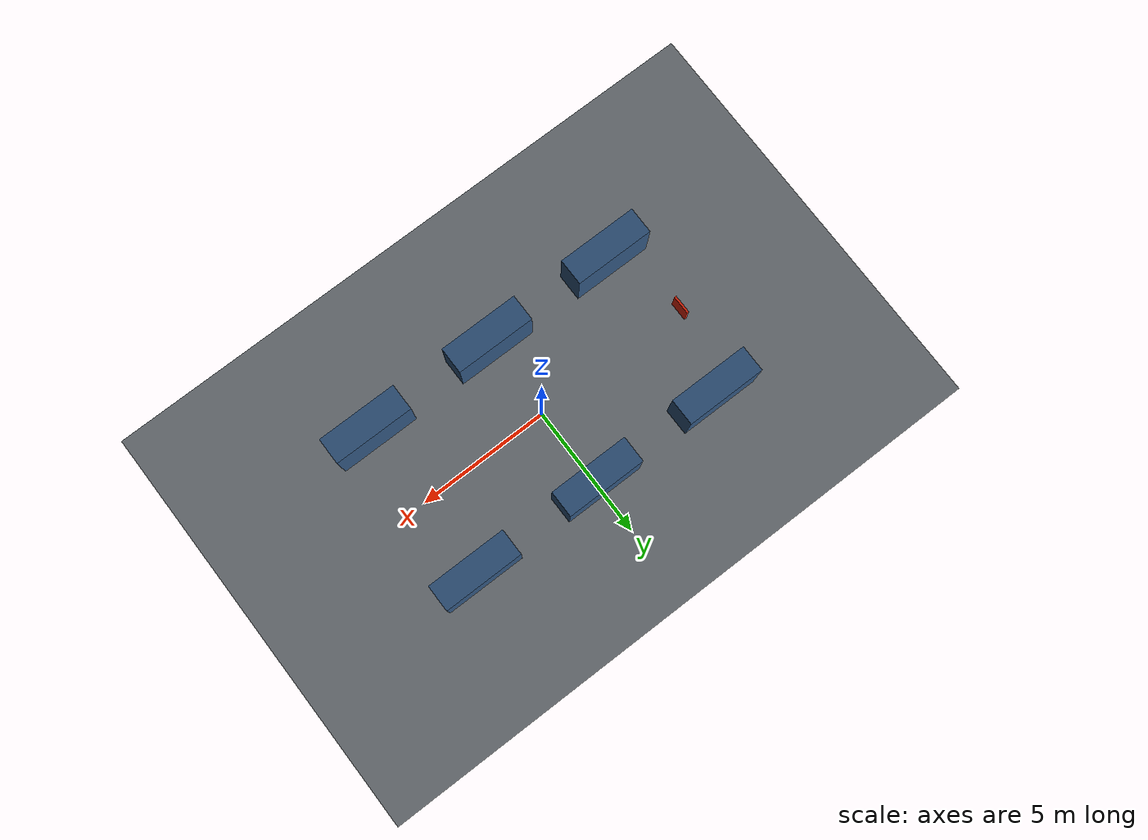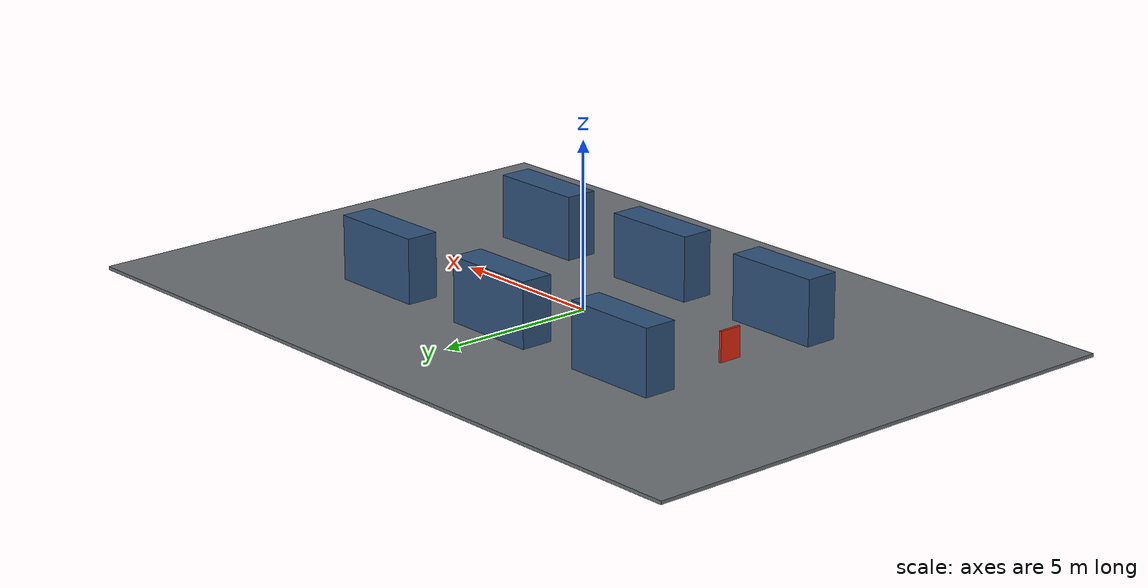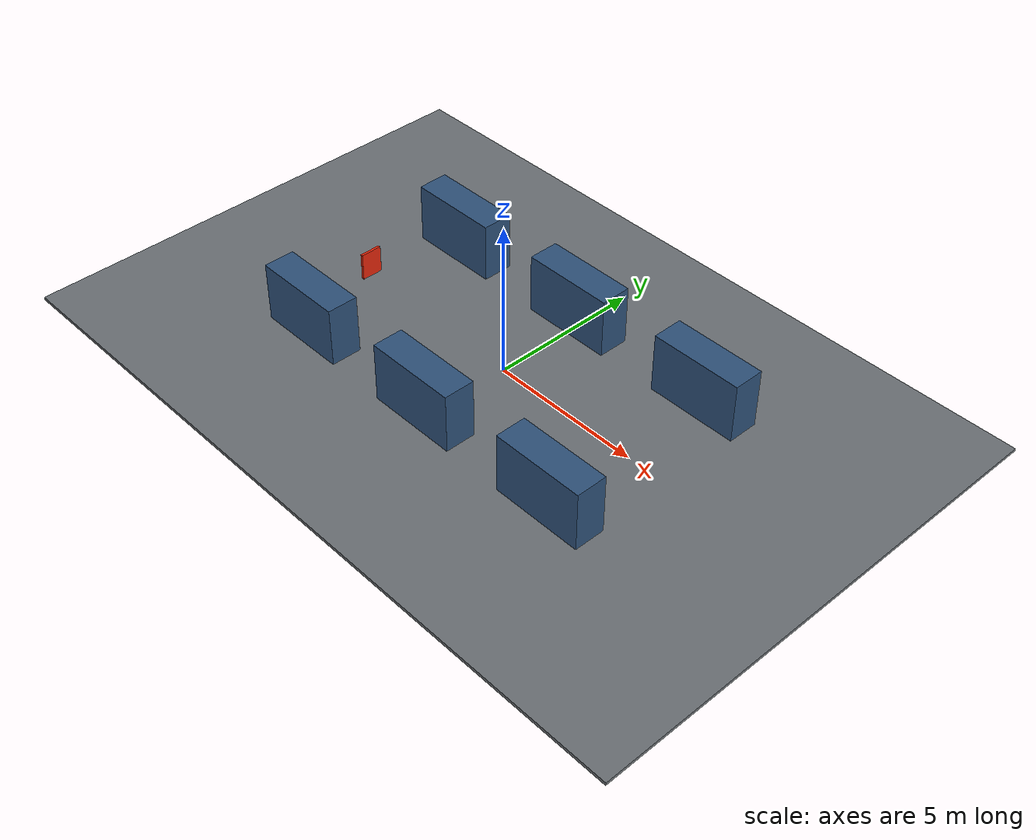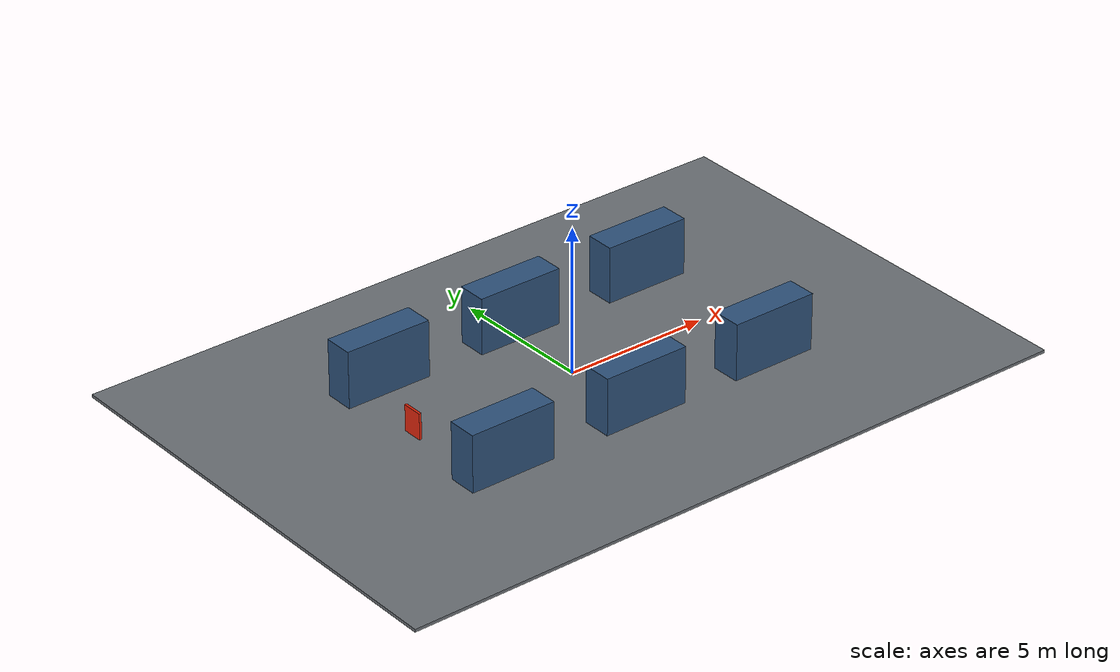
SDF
<?xml version="1.0"?>
<sdf version="1.9">
  <world name="warehouse_playground">
    <physics name="warehouse_playground_physics" type="ignored">
      <max_step_size>0.005</max_step_size>
      <real_time_factor>1.0</real_time_factor>
    </physics>

    <plugin filename="gz-sim-physics-system" name="gz::sim::systems::Physics"/>
    <plugin filename="gz-sim-user-commands-system" name="gz::sim::systems::UserCommands"/>
    <plugin filename="gz-sim-scene-broadcaster-system" name="gz::sim::systems::SceneBroadcaster"/>
    <plugin filename="gz-sim-sensors-system" name="gz::sim::systems::Sensors">
      <render_engine>ogre2</render_engine>
    </plugin>

    <gravity>0 0 -9.81</gravity>
    <scene>
      <ambient>0.45 0.45 0.45 1</ambient>
      <background>0.12 0.14 0.18 1</background>
      <shadows>false</shadows>
    </scene>

    <light name="warehouse_light" type="directional">
      <cast_shadows>false</cast_shadows>
      <pose>0 0 12 0 0 0</pose>
      <diffuse>0.85 0.85 0.85 1</diffuse>
      <specular>0.1 0.1 0.1 1</specular>
      <direction>-0.4 0.2 -0.9</direction>
    </light>

    <model name="warehouse_floor">
      <static>true</static>
      <link name="floor_link">
        <collision name="collision">
          <geometry><box><size>24 16 0.1</size></box></geometry>
        </collision>
        <visual name="visual">
          <geometry><box><size>24 16 0.1</size></box></geometry>
          <material>
            <ambient>0.42 0.44 0.46 1</ambient>
            <diffuse>0.42 0.44 0.46 1</diffuse>
          </material>
        </visual>
      </link>
    </model>

    <model name="shelf_1">
      <static>true</static><pose>-5 3 1 0 0 0</pose>
      <link name="link">
        <collision name="collision"><geometry><box><size>3 1 2</size></box></geometry></collision>
        <visual name="visual"><geometry><box><size>3 1 2</size></box></geometry><material><ambient>0.18 0.32 0.48 1</ambient><diffuse>0.18 0.32 0.48 1</diffuse></material></visual>
      </link>
    </model>
    <model name="shelf_2">
      <static>true</static><pose>0 3 1 0 0 0</pose>
      <link name="link">
        <collision name="collision"><geometry><box><size>3 1 2</size></box></geometry></collision>
        <visual name="visual"><geometry><box><size>3 1 2</size></box></geometry><material><ambient>0.18 0.32 0.48 1</ambient><diffuse>0.18 0.32 0.48 1</diffuse></material></visual>
      </link>
    </model>
    <model name="shelf_3">
      <static>true</static><pose>5 3 1 0 0 0</pose>
      <link name="link">
        <collision name="collision"><geometry><box><size>3 1 2</size></box></geometry></collision>
        <visual name="visual"><geometry><box><size>3 1 2</size></box></geometry><material><ambient>0.18 0.32 0.48 1</ambient><diffuse>0.18 0.32 0.48 1</diffuse></material></visual>
      </link>
    </model>
    <model name="shelf_4">
      <static>true</static><pose>-5 -3 1 0 0 0</pose>
      <link name="link">
        <collision name="collision"><geometry><box><size>3 1 2</size></box></geometry></collision>
        <visual name="visual"><geometry><box><size>3 1 2</size></box></geometry><material><ambient>0.18 0.32 0.48 1</ambient><diffuse>0.18 0.32 0.48 1</diffuse></material></visual>
      </link>
    </model>
    <model name="shelf_5">
      <static>true</static><pose>0 -3 1 0 0 0</pose>
      <link name="link">
        <collision name="collision"><geometry><box><size>3 1 2</size></box></geometry></collision>
        <visual name="visual"><geometry><box><size>3 1 2</size></box></geometry><material><ambient>0.18 0.32 0.48 1</ambient><diffuse>0.18 0.32 0.48 1</diffuse></material></visual>
      </link>
    </model>
    <model name="shelf_6">
      <static>true</static><pose>5 -3 1 0 0 0</pose>
      <link name="link">
        <collision name="collision"><geometry><box><size>3 1 2</size></box></geometry></collision>
        <visual name="visual"><geometry><box><size>3 1 2</size></box></geometry><material><ambient>0.18 0.32 0.48 1</ambient><diffuse>0.18 0.32 0.48 1</diffuse></material></visual>
      </link>
    </model>

    <model name="camera_rig">
      <static>true</static>
      <pose>-9 0 0.65 0 0 0</pose>
      <link name="camera_link">
        <sensor name="front_camera" type="camera">
          <topic>/smoke/camera/image</topic>
          <update_rate>15</update_rate>
          <always_on>true</always_on>
          <visualize>true</visualize>
          <camera>
            <horizontal_fov>1.2217304764</horizontal_fov>
            <image><width>640</width><height>480</height><format>R8G8B8</format></image>
            <clip><near>0.1</near><far>30.0</far></clip>
          </camera>
        </sensor>
      </link>
    </model>

    <model name="visual_target">
      <static>true</static>
      <pose>-6 0 0.6 0 0 0</pose>
      <link name="target_link">
        <collision name="collision">
          <geometry><box><size>0.08 0.7 0.9</size></box></geometry>
        </collision>
        <visual name="visual">
          <geometry><box><size>0.08 0.7 0.9</size></box></geometry>
          <material><ambient>0.9 0.15 0.05 1</ambient><diffuse>0.9 0.15 0.05 1</diffuse></material>
        </visual>
      </link>
    </model>
  </world>
</sdf>
